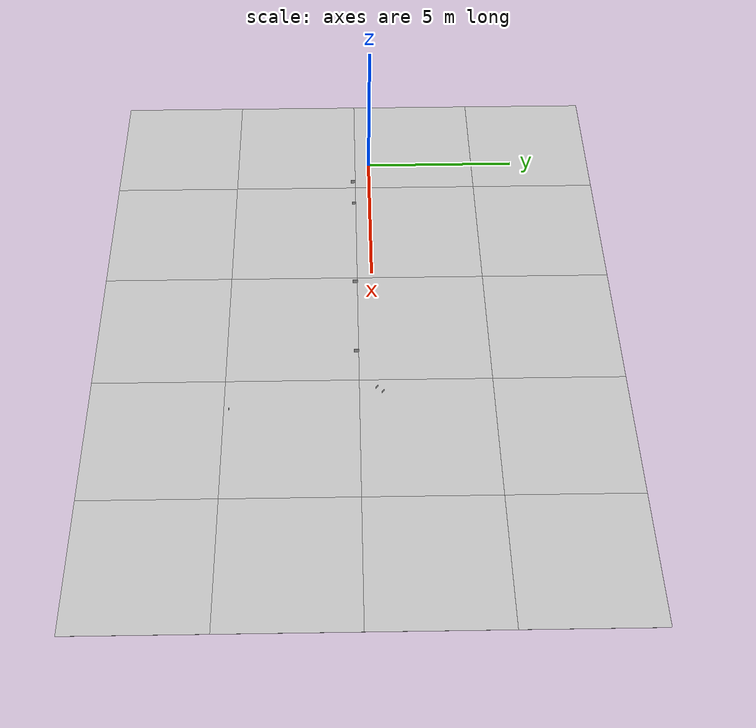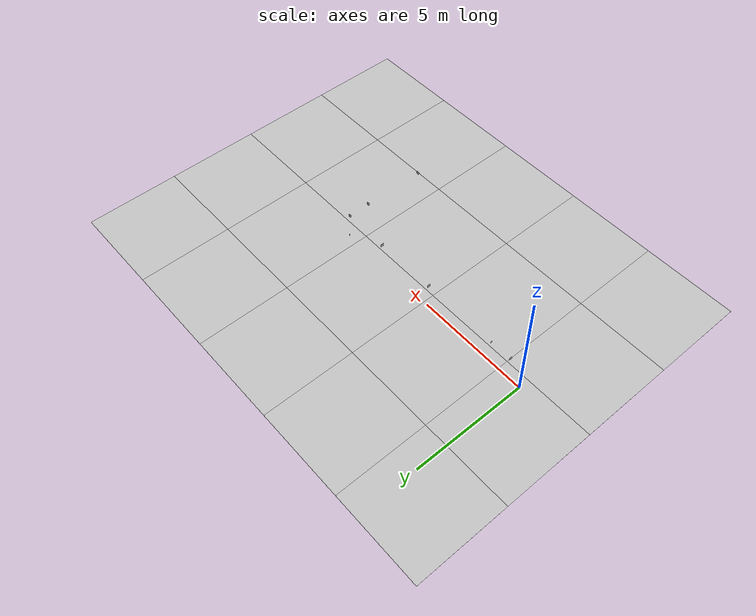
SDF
<sdf version='1.6'><world name='default'>
    <light name='sun_light' type='directional'>
      <pose frame=''>0 0 10 0 -0 0</pose>
      <diffuse>0.5 0.5 0.5 1</diffuse>
      <specular>0.1 0.1 0.1 1</specular>
      <direction>0.1 0.1 -0.9</direction>
      <attenuation>
        <range>20</range>
        <constant>0.5</constant>
        <linear>0.01</linear>
        <quadratic>0.001</quadratic>
      </attenuation>
      <cast_shadows>1</cast_shadows>
    </light>

    <model name='Tile/0-0'>
      <static>1</static>
      <link name='link'>
        <collision name='collision'>
          <geometry>
            <plane>
              <normal>0 0 1</normal>
              <size>4.096 4.096</size>
            </plane>
          </geometry>
          <surface>
            <friction>
              <ode>
                <mu>100</mu>
                <mu2>50</mu2>
              </ode>
              <torsional>
                <ode/>
              </torsional>
            </friction>
            <contact>
              <ode/>
            </contact>
            <bounce/>
          </surface>
          <max_contacts>10</max_contacts>
        </collision>
        <visual name='visual'>
          <cast_shadows>0</cast_shadows>
          <geometry>
            <plane>
              <normal>0 0 1</normal>
              <size>4.096 4.096</size>
            </plane>
          </geometry>
          <material>
            <script>
              <uri>file://materials/scripts</uri>
              <uri>file://materials/textures</uri>
              <name>Tile/5eab350b8220ac9944dbdfa4ac3288c7c17e24c3bf5df0dfcf6173d64dae00a1</name>
            </script>
          </material>
        </visual>
        <self_collide>0</self_collide>
        <enable_wind>0</enable_wind>
        <kinematic>0</kinematic>
      </link>
      <pose frame=''>-0.952 -6.626376604341546 0 0 -0 0</pose>
    </model>

    <model name='Tile/0-1'>
      <static>1</static>
      <link name='link'>
        <collision name='collision'>
          <geometry>
            <plane>
              <normal>0 0 1</normal>
              <size>4.096 4.096</size>
            </plane>
          </geometry>
          <surface>
            <friction>
              <ode>
                <mu>100</mu>
                <mu2>50</mu2>
              </ode>
              <torsional>
                <ode/>
              </torsional>
            </friction>
            <contact>
              <ode/>
            </contact>
            <bounce/>
          </surface>
          <max_contacts>10</max_contacts>
        </collision>
        <visual name='visual'>
          <cast_shadows>0</cast_shadows>
          <geometry>
            <plane>
              <normal>0 0 1</normal>
              <size>4.096 4.096</size>
            </plane>
          </geometry>
          <material>
            <script>
              <uri>file://materials/scripts</uri>
              <uri>file://materials/textures</uri>
              <name>Tile/5eab350b8220ac9944dbdfa4ac3288c7c17e24c3bf5df0dfcf6173d64dae00a1</name>
            </script>
          </material>
        </visual>
        <self_collide>0</self_collide>
        <enable_wind>0</enable_wind>
        <kinematic>0</kinematic>
      </link>
      <pose frame=''>-0.952 -2.530376604341546 0 0 -0 0</pose>
    </model>

    <model name='Tile/0-2'>
      <static>1</static>
      <link name='link'>
        <collision name='collision'>
          <geometry>
            <plane>
              <normal>0 0 1</normal>
              <size>4.096 4.096</size>
            </plane>
          </geometry>
          <surface>
            <friction>
              <ode>
                <mu>100</mu>
                <mu2>50</mu2>
              </ode>
              <torsional>
                <ode/>
              </torsional>
            </friction>
            <contact>
              <ode/>
            </contact>
            <bounce/>
          </surface>
          <max_contacts>10</max_contacts>
        </collision>
        <visual name='visual'>
          <cast_shadows>0</cast_shadows>
          <geometry>
            <plane>
              <normal>0 0 1</normal>
              <size>4.096 4.096</size>
            </plane>
          </geometry>
          <material>
            <script>
              <uri>file://materials/scripts</uri>
              <uri>file://materials/textures</uri>
              <name>Tile/0d3b56ebeec1a04fa63aa44e5e2106665972b9808b6b0cf0618e9cbfecff822f</name>
            </script>
          </material>
        </visual>
        <self_collide>0</self_collide>
        <enable_wind>0</enable_wind>
        <kinematic>0</kinematic>
      </link>
      <pose frame=''>-0.952 1.565623395658454 0 0 -0 0</pose>
    </model>

    <model name='Tile/0-3'>
      <static>1</static>
      <link name='link'>
        <collision name='collision'>
          <geometry>
            <plane>
              <normal>0 0 1</normal>
              <size>4.096 4.096</size>
            </plane>
          </geometry>
          <surface>
            <friction>
              <ode>
                <mu>100</mu>
                <mu2>50</mu2>
              </ode>
              <torsional>
                <ode/>
              </torsional>
            </friction>
            <contact>
              <ode/>
            </contact>
            <bounce/>
          </surface>
          <max_contacts>10</max_contacts>
        </collision>
        <visual name='visual'>
          <cast_shadows>0</cast_shadows>
          <geometry>
            <plane>
              <normal>0 0 1</normal>
              <size>4.096 4.096</size>
            </plane>
          </geometry>
          <material>
            <script>
              <uri>file://materials/scripts</uri>
              <uri>file://materials/textures</uri>
              <name>Tile/5eab350b8220ac9944dbdfa4ac3288c7c17e24c3bf5df0dfcf6173d64dae00a1</name>
            </script>
          </material>
        </visual>
        <self_collide>0</self_collide>
        <enable_wind>0</enable_wind>
        <kinematic>0</kinematic>
      </link>
      <pose frame=''>-0.952 5.661623395658454 0 0 -0 0</pose>
    </model>

    <model name='Tile/1-0'>
      <static>1</static>
      <link name='link'>
        <collision name='collision'>
          <geometry>
            <plane>
              <normal>0 0 1</normal>
              <size>4.096 4.096</size>
            </plane>
          </geometry>
          <surface>
            <friction>
              <ode>
                <mu>100</mu>
                <mu2>50</mu2>
              </ode>
              <torsional>
                <ode/>
              </torsional>
            </friction>
            <contact>
              <ode/>
            </contact>
            <bounce/>
          </surface>
          <max_contacts>10</max_contacts>
        </collision>
        <visual name='visual'>
          <cast_shadows>0</cast_shadows>
          <geometry>
            <plane>
              <normal>0 0 1</normal>
              <size>4.096 4.096</size>
            </plane>
          </geometry>
          <material>
            <script>
              <uri>file://materials/scripts</uri>
              <uri>file://materials/textures</uri>
              <name>Tile/5eab350b8220ac9944dbdfa4ac3288c7c17e24c3bf5df0dfcf6173d64dae00a1</name>
            </script>
          </material>
        </visual>
        <self_collide>0</self_collide>
        <enable_wind>0</enable_wind>
        <kinematic>0</kinematic>
      </link>
      <pose frame=''>3.144 -6.626376604341546 0 0 -0 0</pose>
    </model>

    <model name='Tile/1-1'>
      <static>1</static>
      <link name='link'>
        <collision name='collision'>
          <geometry>
            <plane>
              <normal>0 0 1</normal>
              <size>4.096 4.096</size>
            </plane>
          </geometry>
          <surface>
            <friction>
              <ode>
                <mu>100</mu>
                <mu2>50</mu2>
              </ode>
              <torsional>
                <ode/>
              </torsional>
            </friction>
            <contact>
              <ode/>
            </contact>
            <bounce/>
          </surface>
          <max_contacts>10</max_contacts>
        </collision>
        <visual name='visual'>
          <cast_shadows>0</cast_shadows>
          <geometry>
            <plane>
              <normal>0 0 1</normal>
              <size>4.096 4.096</size>
            </plane>
          </geometry>
          <material>
            <script>
              <uri>file://materials/scripts</uri>
              <uri>file://materials/textures</uri>
              <name>Tile/5eab350b8220ac9944dbdfa4ac3288c7c17e24c3bf5df0dfcf6173d64dae00a1</name>
            </script>
          </material>
        </visual>
        <self_collide>0</self_collide>
        <enable_wind>0</enable_wind>
        <kinematic>0</kinematic>
      </link>
      <pose frame=''>3.144 -2.530376604341546 0 0 -0 0</pose>
    </model>

    <model name='Tile/1-2'>
      <static>1</static>
      <link name='link'>
        <collision name='collision'>
          <geometry>
            <plane>
              <normal>0 0 1</normal>
              <size>4.096 4.096</size>
            </plane>
          </geometry>
          <surface>
            <friction>
              <ode>
                <mu>100</mu>
                <mu2>50</mu2>
              </ode>
              <torsional>
                <ode/>
              </torsional>
            </friction>
            <contact>
              <ode/>
            </contact>
            <bounce/>
          </surface>
          <max_contacts>10</max_contacts>
        </collision>
        <visual name='visual'>
          <cast_shadows>0</cast_shadows>
          <geometry>
            <plane>
              <normal>0 0 1</normal>
              <size>4.096 4.096</size>
            </plane>
          </geometry>
          <material>
            <script>
              <uri>file://materials/scripts</uri>
              <uri>file://materials/textures</uri>
              <name>Tile/7a7b382144a9cc36955b352eee77f6b44ff83e6dc96b7b231b3600ac29e26fa3</name>
            </script>
          </material>
        </visual>
        <self_collide>0</self_collide>
        <enable_wind>0</enable_wind>
        <kinematic>0</kinematic>
      </link>
      <pose frame=''>3.144 1.565623395658454 0 0 -0 0</pose>
    </model>

    <model name='Tile/1-3'>
      <static>1</static>
      <link name='link'>
        <collision name='collision'>
          <geometry>
            <plane>
              <normal>0 0 1</normal>
              <size>4.096 4.096</size>
            </plane>
          </geometry>
          <surface>
            <friction>
              <ode>
                <mu>100</mu>
                <mu2>50</mu2>
              </ode>
              <torsional>
                <ode/>
              </torsional>
            </friction>
            <contact>
              <ode/>
            </contact>
            <bounce/>
          </surface>
          <max_contacts>10</max_contacts>
        </collision>
        <visual name='visual'>
          <cast_shadows>0</cast_shadows>
          <geometry>
            <plane>
              <normal>0 0 1</normal>
              <size>4.096 4.096</size>
            </plane>
          </geometry>
          <material>
            <script>
              <uri>file://materials/scripts</uri>
              <uri>file://materials/textures</uri>
              <name>Tile/5eab350b8220ac9944dbdfa4ac3288c7c17e24c3bf5df0dfcf6173d64dae00a1</name>
            </script>
          </material>
        </visual>
        <self_collide>0</self_collide>
        <enable_wind>0</enable_wind>
        <kinematic>0</kinematic>
      </link>
      <pose frame=''>3.144 5.661623395658454 0 0 -0 0</pose>
    </model>

    <model name='Tile/2-0'>
      <static>1</static>
      <link name='link'>
        <collision name='collision'>
          <geometry>
            <plane>
              <normal>0 0 1</normal>
              <size>4.096 4.096</size>
            </plane>
          </geometry>
          <surface>
            <friction>
              <ode>
                <mu>100</mu>
                <mu2>50</mu2>
              </ode>
              <torsional>
                <ode/>
              </torsional>
            </friction>
            <contact>
              <ode/>
            </contact>
            <bounce/>
          </surface>
          <max_contacts>10</max_contacts>
        </collision>
        <visual name='visual'>
          <cast_shadows>0</cast_shadows>
          <geometry>
            <plane>
              <normal>0 0 1</normal>
              <size>4.096 4.096</size>
            </plane>
          </geometry>
          <material>
            <script>
              <uri>file://materials/scripts</uri>
              <uri>file://materials/textures</uri>
              <name>Tile/5eab350b8220ac9944dbdfa4ac3288c7c17e24c3bf5df0dfcf6173d64dae00a1</name>
            </script>
          </material>
        </visual>
        <self_collide>0</self_collide>
        <enable_wind>0</enable_wind>
        <kinematic>0</kinematic>
      </link>
      <pose frame=''>7.24 -6.626376604341546 0 0 -0 0</pose>
    </model>

    <model name='Tile/2-1'>
      <static>1</static>
      <link name='link'>
        <collision name='collision'>
          <geometry>
            <plane>
              <normal>0 0 1</normal>
              <size>4.096 4.096</size>
            </plane>
          </geometry>
          <surface>
            <friction>
              <ode>
                <mu>100</mu>
                <mu2>50</mu2>
              </ode>
              <torsional>
                <ode/>
              </torsional>
            </friction>
            <contact>
              <ode/>
            </contact>
            <bounce/>
          </surface>
          <max_contacts>10</max_contacts>
        </collision>
        <visual name='visual'>
          <cast_shadows>0</cast_shadows>
          <geometry>
            <plane>
              <normal>0 0 1</normal>
              <size>4.096 4.096</size>
            </plane>
          </geometry>
          <material>
            <script>
              <uri>file://materials/scripts</uri>
              <uri>file://materials/textures</uri>
              <name>Tile/5eab350b8220ac9944dbdfa4ac3288c7c17e24c3bf5df0dfcf6173d64dae00a1</name>
            </script>
          </material>
        </visual>
        <self_collide>0</self_collide>
        <enable_wind>0</enable_wind>
        <kinematic>0</kinematic>
      </link>
      <pose frame=''>7.24 -2.530376604341546 0 0 -0 0</pose>
    </model>

    <model name='Tile/2-2'>
      <static>1</static>
      <link name='link'>
        <collision name='collision'>
          <geometry>
            <plane>
              <normal>0 0 1</normal>
              <size>4.096 4.096</size>
            </plane>
          </geometry>
          <surface>
            <friction>
              <ode>
                <mu>100</mu>
                <mu2>50</mu2>
              </ode>
              <torsional>
                <ode/>
              </torsional>
            </friction>
            <contact>
              <ode/>
            </contact>
            <bounce/>
          </surface>
          <max_contacts>10</max_contacts>
        </collision>
        <visual name='visual'>
          <cast_shadows>0</cast_shadows>
          <geometry>
            <plane>
              <normal>0 0 1</normal>
              <size>4.096 4.096</size>
            </plane>
          </geometry>
          <material>
            <script>
              <uri>file://materials/scripts</uri>
              <uri>file://materials/textures</uri>
              <name>Tile/c292249467a1ea4dc22c4ba3b3778317824ccd494590bf294661dee64e4bcaf7</name>
            </script>
          </material>
        </visual>
        <self_collide>0</self_collide>
        <enable_wind>0</enable_wind>
        <kinematic>0</kinematic>
      </link>
      <pose frame=''>7.24 1.565623395658454 0 0 -0 0</pose>
    </model>

    <model name='Tile/2-3'>
      <static>1</static>
      <link name='link'>
        <collision name='collision'>
          <geometry>
            <plane>
              <normal>0 0 1</normal>
              <size>4.096 4.096</size>
            </plane>
          </geometry>
          <surface>
            <friction>
              <ode>
                <mu>100</mu>
                <mu2>50</mu2>
              </ode>
              <torsional>
                <ode/>
              </torsional>
            </friction>
            <contact>
              <ode/>
            </contact>
            <bounce/>
          </surface>
          <max_contacts>10</max_contacts>
        </collision>
        <visual name='visual'>
          <cast_shadows>0</cast_shadows>
          <geometry>
            <plane>
              <normal>0 0 1</normal>
              <size>4.096 4.096</size>
            </plane>
          </geometry>
          <material>
            <script>
              <uri>file://materials/scripts</uri>
              <uri>file://materials/textures</uri>
              <name>Tile/5eab350b8220ac9944dbdfa4ac3288c7c17e24c3bf5df0dfcf6173d64dae00a1</name>
            </script>
          </material>
        </visual>
        <self_collide>0</self_collide>
        <enable_wind>0</enable_wind>
        <kinematic>0</kinematic>
      </link>
      <pose frame=''>7.24 5.661623395658454 0 0 -0 0</pose>
    </model>

    <model name='Tile/3-0'>
      <static>1</static>
      <link name='link'>
        <collision name='collision'>
          <geometry>
            <plane>
              <normal>0 0 1</normal>
              <size>4.096 4.096</size>
            </plane>
          </geometry>
          <surface>
            <friction>
              <ode>
                <mu>100</mu>
                <mu2>50</mu2>
              </ode>
              <torsional>
                <ode/>
              </torsional>
            </friction>
            <contact>
              <ode/>
            </contact>
            <bounce/>
          </surface>
          <max_contacts>10</max_contacts>
        </collision>
        <visual name='visual'>
          <cast_shadows>0</cast_shadows>
          <geometry>
            <plane>
              <normal>0 0 1</normal>
              <size>4.096 4.096</size>
            </plane>
          </geometry>
          <material>
            <script>
              <uri>file://materials/scripts</uri>
              <uri>file://materials/textures</uri>
              <name>Tile/5feab238d3654c8d8984ff233f78fbc56b553bacfc72eccd739d9b164b9ef07a</name>
            </script>
          </material>
        </visual>
        <self_collide>0</self_collide>
        <enable_wind>0</enable_wind>
        <kinematic>0</kinematic>
      </link>
      <pose frame=''>11.336 -6.626376604341546 0 0 -0 0</pose>
    </model>

    <model name='Tile/3-1'>
      <static>1</static>
      <link name='link'>
        <collision name='collision'>
          <geometry>
            <plane>
              <normal>0 0 1</normal>
              <size>4.096 4.096</size>
            </plane>
          </geometry>
          <surface>
            <friction>
              <ode>
                <mu>100</mu>
                <mu2>50</mu2>
              </ode>
              <torsional>
                <ode/>
              </torsional>
            </friction>
            <contact>
              <ode/>
            </contact>
            <bounce/>
          </surface>
          <max_contacts>10</max_contacts>
        </collision>
        <visual name='visual'>
          <cast_shadows>0</cast_shadows>
          <geometry>
            <plane>
              <normal>0 0 1</normal>
              <size>4.096 4.096</size>
            </plane>
          </geometry>
          <material>
            <script>
              <uri>file://materials/scripts</uri>
              <uri>file://materials/textures</uri>
              <name>Tile/d0aacda77a939d66b6181144fec952c39ad4f3b0008b9fc4f218946d81a3121f</name>
            </script>
          </material>
        </visual>
        <self_collide>0</self_collide>
        <enable_wind>0</enable_wind>
        <kinematic>0</kinematic>
      </link>
      <pose frame=''>11.336 -2.530376604341546 0 0 -0 0</pose>
    </model>

    <model name='Tile/3-2'>
      <static>1</static>
      <link name='link'>
        <collision name='collision'>
          <geometry>
            <plane>
              <normal>0 0 1</normal>
              <size>4.096 4.096</size>
            </plane>
          </geometry>
          <surface>
            <friction>
              <ode>
                <mu>100</mu>
                <mu2>50</mu2>
              </ode>
              <torsional>
                <ode/>
              </torsional>
            </friction>
            <contact>
              <ode/>
            </contact>
            <bounce/>
          </surface>
          <max_contacts>10</max_contacts>
        </collision>
        <visual name='visual'>
          <cast_shadows>0</cast_shadows>
          <geometry>
            <plane>
              <normal>0 0 1</normal>
              <size>4.096 4.096</size>
            </plane>
          </geometry>
          <material>
            <script>
              <uri>file://materials/scripts</uri>
              <uri>file://materials/textures</uri>
              <name>Tile/5fe88845fdd58fc8382aec62da61a569439839da24a77e844194e14f3f0debde</name>
            </script>
          </material>
        </visual>
        <self_collide>0</self_collide>
        <enable_wind>0</enable_wind>
        <kinematic>0</kinematic>
      </link>
      <pose frame=''>11.336 1.565623395658454 0 0 -0 0</pose>
    </model>

    <model name='Tile/3-3'>
      <static>1</static>
      <link name='link'>
        <collision name='collision'>
          <geometry>
            <plane>
              <normal>0 0 1</normal>
              <size>4.096 4.096</size>
            </plane>
          </geometry>
          <surface>
            <friction>
              <ode>
                <mu>100</mu>
                <mu2>50</mu2>
              </ode>
              <torsional>
                <ode/>
              </torsional>
            </friction>
            <contact>
              <ode/>
            </contact>
            <bounce/>
          </surface>
          <max_contacts>10</max_contacts>
        </collision>
        <visual name='visual'>
          <cast_shadows>0</cast_shadows>
          <geometry>
            <plane>
              <normal>0 0 1</normal>
              <size>4.096 4.096</size>
            </plane>
          </geometry>
          <material>
            <script>
              <uri>file://materials/scripts</uri>
              <uri>file://materials/textures</uri>
              <name>Tile/5eab350b8220ac9944dbdfa4ac3288c7c17e24c3bf5df0dfcf6173d64dae00a1</name>
            </script>
          </material>
        </visual>
        <self_collide>0</self_collide>
        <enable_wind>0</enable_wind>
        <kinematic>0</kinematic>
      </link>
      <pose frame=''>11.336 5.661623395658454 0 0 -0 0</pose>
    </model>

    <model name='Tile/4-0'>
      <static>1</static>
      <link name='link'>
        <collision name='collision'>
          <geometry>
            <plane>
              <normal>0 0 1</normal>
              <size>4.096 4.096</size>
            </plane>
          </geometry>
          <surface>
            <friction>
              <ode>
                <mu>100</mu>
                <mu2>50</mu2>
              </ode>
              <torsional>
                <ode/>
              </torsional>
            </friction>
            <contact>
              <ode/>
            </contact>
            <bounce/>
          </surface>
          <max_contacts>10</max_contacts>
        </collision>
        <visual name='visual'>
          <cast_shadows>0</cast_shadows>
          <geometry>
            <plane>
              <normal>0 0 1</normal>
              <size>4.096 4.096</size>
            </plane>
          </geometry>
          <material>
            <script>
              <uri>file://materials/scripts</uri>
              <uri>file://materials/textures</uri>
              <name>Tile/5eab350b8220ac9944dbdfa4ac3288c7c17e24c3bf5df0dfcf6173d64dae00a1</name>
            </script>
          </material>
        </visual>
        <self_collide>0</self_collide>
        <enable_wind>0</enable_wind>
        <kinematic>0</kinematic>
      </link>
      <pose frame=''>15.431999999999999 -6.626376604341546 0 0 -0 0</pose>
    </model>

    <model name='Tile/4-1'>
      <static>1</static>
      <link name='link'>
        <collision name='collision'>
          <geometry>
            <plane>
              <normal>0 0 1</normal>
              <size>4.096 4.096</size>
            </plane>
          </geometry>
          <surface>
            <friction>
              <ode>
                <mu>100</mu>
                <mu2>50</mu2>
              </ode>
              <torsional>
                <ode/>
              </torsional>
            </friction>
            <contact>
              <ode/>
            </contact>
            <bounce/>
          </surface>
          <max_contacts>10</max_contacts>
        </collision>
        <visual name='visual'>
          <cast_shadows>0</cast_shadows>
          <geometry>
            <plane>
              <normal>0 0 1</normal>
              <size>4.096 4.096</size>
            </plane>
          </geometry>
          <material>
            <script>
              <uri>file://materials/scripts</uri>
              <uri>file://materials/textures</uri>
              <name>Tile/5eab350b8220ac9944dbdfa4ac3288c7c17e24c3bf5df0dfcf6173d64dae00a1</name>
            </script>
          </material>
        </visual>
        <self_collide>0</self_collide>
        <enable_wind>0</enable_wind>
        <kinematic>0</kinematic>
      </link>
      <pose frame=''>15.431999999999999 -2.530376604341546 0 0 -0 0</pose>
    </model>

    <model name='Tile/4-2'>
      <static>1</static>
      <link name='link'>
        <collision name='collision'>
          <geometry>
            <plane>
              <normal>0 0 1</normal>
              <size>4.096 4.096</size>
            </plane>
          </geometry>
          <surface>
            <friction>
              <ode>
                <mu>100</mu>
                <mu2>50</mu2>
              </ode>
              <torsional>
                <ode/>
              </torsional>
            </friction>
            <contact>
              <ode/>
            </contact>
            <bounce/>
          </surface>
          <max_contacts>10</max_contacts>
        </collision>
        <visual name='visual'>
          <cast_shadows>0</cast_shadows>
          <geometry>
            <plane>
              <normal>0 0 1</normal>
              <size>4.096 4.096</size>
            </plane>
          </geometry>
          <material>
            <script>
              <uri>file://materials/scripts</uri>
              <uri>file://materials/textures</uri>
              <name>Tile/5eab350b8220ac9944dbdfa4ac3288c7c17e24c3bf5df0dfcf6173d64dae00a1</name>
            </script>
          </material>
        </visual>
        <self_collide>0</self_collide>
        <enable_wind>0</enable_wind>
        <kinematic>0</kinematic>
      </link>
      <pose frame=''>15.431999999999999 1.565623395658454 0 0 -0 0</pose>
    </model>

    <model name='Tile/4-3'>
      <static>1</static>
      <link name='link'>
        <collision name='collision'>
          <geometry>
            <plane>
              <normal>0 0 1</normal>
              <size>4.096 4.096</size>
            </plane>
          </geometry>
          <surface>
            <friction>
              <ode>
                <mu>100</mu>
                <mu2>50</mu2>
              </ode>
              <torsional>
                <ode/>
              </torsional>
            </friction>
            <contact>
              <ode/>
            </contact>
            <bounce/>
          </surface>
          <max_contacts>10</max_contacts>
        </collision>
        <visual name='visual'>
          <cast_shadows>0</cast_shadows>
          <geometry>
            <plane>
              <normal>0 0 1</normal>
              <size>4.096 4.096</size>
            </plane>
          </geometry>
          <material>
            <script>
              <uri>file://materials/scripts</uri>
              <uri>file://materials/textures</uri>
              <name>Tile/5eab350b8220ac9944dbdfa4ac3288c7c17e24c3bf5df0dfcf6173d64dae00a1</name>
            </script>
          </material>
        </visual>
        <self_collide>0</self_collide>
        <enable_wind>0</enable_wind>
        <kinematic>0</kinematic>
      </link>
      <pose frame=''>15.431999999999999 5.661623395658454 0 0 -0 0</pose>
    </model>

    <model name='Sign/-5'>
      <static>1</static>
      <link name='link'>
        <visual name='visual'>
          <cast_shadows>0</cast_shadows>
          <geometry>
            <plane>
              <normal>0 0 1</normal>
              <size>0.15 0.15</size>
            </plane>
          </geometry>
          <material>
            <script>
              <uri>file://materials/scripts</uri>
              <uri>file://materials/textures</uri>
              <name>Sign/stvo-274.1</name>
            </script>
          </material>
        </visual>
        <self_collide>0</self_collide>
        <enable_wind>0</enable_wind>
        <kinematic>0</kinematic>
      </link>
      <pose frame=''>1.005 -0.55 0.22499999999999998 1.5707963267948966 0 4.71238898038469</pose>
    </model>

    <model name='Sign/-10'>
      <static>1</static>
      <link name='link'>
        <visual name='visual'>
          <cast_shadows>0</cast_shadows>
          <geometry>
            <plane>
              <normal>0 0 1</normal>
              <size>0.1 0.1</size>
            </plane>
          </geometry>
          <material>
            <script>
              <uri>file://materials/scripts</uri>
              <uri>file://materials/textures</uri>
              <name>Sign/stvo-208</name>
            </script>
          </material>
        </visual>
        <self_collide>0</self_collide>
        <enable_wind>0</enable_wind>
        <kinematic>0</kinematic>
      </link>
      <pose frame=''>2.0149999999999997 -0.55 0.2 1.5707963267948966 0 4.71238898038469</pose>
    </model>

    <model name='Sign/-20'>
      <static>1</static>
      <link name='link'>
        <visual name='visual'>
          <cast_shadows>0</cast_shadows>
          <geometry>
            <plane>
              <normal>0 0 1</normal>
              <size>0.15 0.15</size>
            </plane>
          </geometry>
          <material>
            <script>
              <uri>file://materials/scripts</uri>
              <uri>file://materials/textures</uri>
              <name>Sign/stvo-350-10</name>
            </script>
          </material>
        </visual>
        <self_collide>0</self_collide>
        <enable_wind>0</enable_wind>
        <kinematic>0</kinematic>
      </link>
      <pose frame=''>5.5249999999999995 -0.55 0.22499999999999998 1.5707963267948966 0 4.71238898038469</pose>
    </model>

    <model name='Sign/-32'>
      <static>1</static>
      <link name='link'>
        <visual name='visual'>
          <cast_shadows>0</cast_shadows>
          <geometry>
            <plane>
              <normal>0 0 1</normal>
              <size>0.15 0.15</size>
            </plane>
          </geometry>
          <material>
            <script>
              <uri>file://materials/scripts</uri>
              <uri>file://materials/textures</uri>
              <name>Sign/stvo-274.2</name>
            </script>
          </material>
        </visual>
        <self_collide>0</self_collide>
        <enable_wind>0</enable_wind>
        <kinematic>0</kinematic>
      </link>
      <pose frame=''>8.335 -0.55 0.22499999999999998 1.5707963267948966 0 4.71238898038469</pose>
    </model>

    <model name='Sign/-45'>
      <static>1</static>
      <link name='link'>
        <visual name='visual'>
          <cast_shadows>0</cast_shadows>
          <geometry>
            <plane>
              <normal>0 0 1</normal>
              <size>0.1 0.1</size>
            </plane>
          </geometry>
          <material>
            <script>
              <uri>file://materials/scripts</uri>
              <uri>file://materials/textures</uri>
              <name>Sign/stvo-209-20</name>
            </script>
          </material>
        </visual>
        <self_collide>0</self_collide>
        <enable_wind>0</enable_wind>
        <kinematic>0</kinematic>
      </link>
      <pose frame=''>9.860279579551078 0.2332738110421968 0.2 1.5707963267948966 0 5.497787143782138</pose>
    </model>

    <model name='Sign/-46'>
      <static>1</static>
      <link name='link'>
        <visual name='visual'>
          <cast_shadows>0</cast_shadows>
          <geometry>
            <plane>
              <normal>0 0 1</normal>
              <size>0.1 0.1</size>
            </plane>
          </geometry>
          <material>
            <script>
              <uri>file://materials/scripts</uri>
              <uri>file://materials/textures</uri>
              <name>Sign/stvo-206</name>
            </script>
          </material>
        </visual>
        <self_collide>0</self_collide>
        <enable_wind>0</enable_wind>
        <kinematic>0</kinematic>
      </link>
      <pose frame=''>9.683502884254441 0.05649711574555982 0.2 1.5707963267948966 0 5.497787143782138</pose>
    </model>

    <model name='Sign/-51'>
      <static>1</static>
      <link name='link'>
        <visual name='visual'>
          <cast_shadows>0</cast_shadows>
          <geometry>
            <plane>
              <normal>0 0 1</normal>
              <size>0.15 0.15</size>
            </plane>
          </geometry>
          <material>
            <script>
              <uri>file://materials/scripts</uri>
              <uri>file://materials/textures</uri>
              <name>Sign/stvo-274.1</name>
            </script>
          </material>
        </visual>
        <self_collide>0</self_collide>
        <enable_wind>0</enable_wind>
        <kinematic>0</kinematic>
      </link>
      <pose frame=''>10.462792206135786 -0.5848989873223329 0.22499999999999998 1.5707963267948966 0 3.141592653589793</pose>
    </model>

    <model name='Sign/-56'>
      <static>1</static>
      <link name='link'>
        <visual name='visual'>
          <cast_shadows>0</cast_shadows>
          <geometry>
            <plane>
              <normal>0 0 1</normal>
              <size>0.15 0.15</size>
            </plane>
          </geometry>
          <material>
            <script>
              <uri>file://materials/scripts</uri>
              <uri>file://materials/textures</uri>
              <name>Sign/stvo-350-10</name>
            </script>
          </material>
        </visual>
        <self_collide>0</self_collide>
        <enable_wind>0</enable_wind>
        <kinematic>0</kinematic>
      </link>
      <pose frame=''>10.462792206135786 -1.5948989873223332 0.22499999999999998 1.5707963267948966 0 3.141592653589793</pose>
    </model>

    <model name='Sign/-68'>
      <static>1</static>
      <link name='link'>
        <visual name='visual'>
          <cast_shadows>0</cast_shadows>
          <geometry>
            <plane>
              <normal>0 0 1</normal>
              <size>0.15 0.15</size>
            </plane>
          </geometry>
          <material>
            <script>
              <uri>file://materials/scripts</uri>
              <uri>file://materials/textures</uri>
              <name>Sign/stvo-274.2</name>
            </script>
          </material>
        </visual>
        <self_collide>0</self_collide>
        <enable_wind>0</enable_wind>
        <kinematic>0</kinematic>
      </link>
      <pose frame=''>10.462792206135786 -4.4048989873223325 0.22499999999999998 1.5707963267948966 0 3.141592653589793</pose>
    </model>
    </world></sdf>
